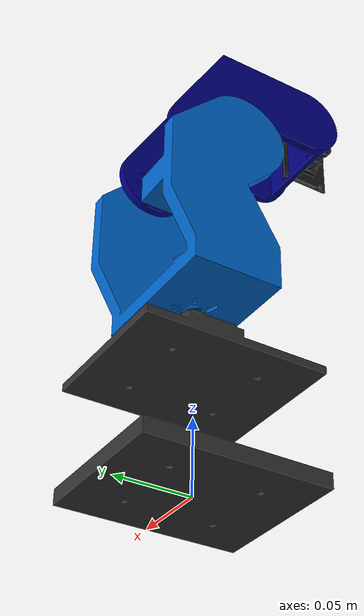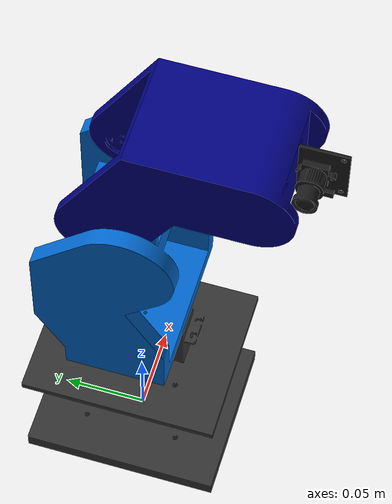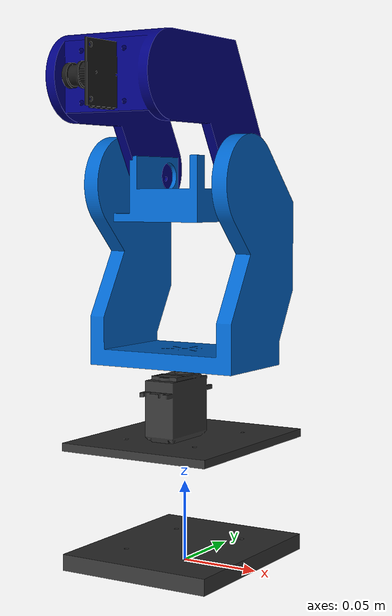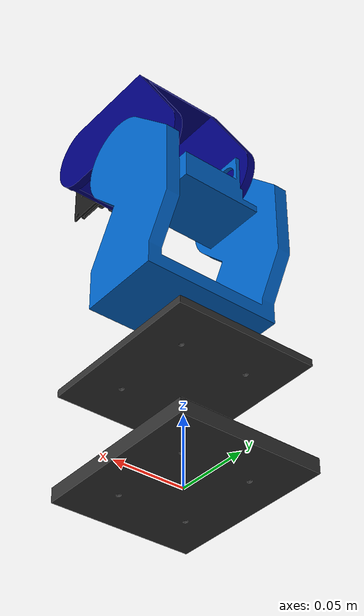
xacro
<?xml version="1.0"?>
<robot name="torreta_pan_tilt" xmlns:xacro="http://www.ros.org/wiki/xacro">

  <!-- MUNDO Y ANCLAJE -->
  <link name="world"/> <!-- Link ficticio para anclar la torreta al mundo -->
  <joint name="fixed_base_joint" type="fixed"> <!-- Junta fija para anclar la torreta al mundo, fixed: no tiene movimiento -->
    <parent link="world"/> <!-- El link padre es el mundo -->
    <child link="base_link"/> <!-- El link hijo es la base de la torreta -->
    <origin xyz="0 0 0" rpy="0 0 0"/>
  </joint>

  <!-- BASE ESTÁTICA -->
  <link name="base_link">
    <visual>
      <origin xyz="0 0 0" rpy="0 0 0"/>
      <geometry>
        <mesh filename="package://turret_description/meshes/Base_link.stl" scale="0.001 0.001 0.001"/>
      </geometry>
      <material name="dark_grey">
        <color rgba="0.2 0.2 0.2 1.0"/>
      </material>
    </visual>
    <collision>
      <origin xyz="0 0 0.05" rpy="0 0 0"/>
      <geometry>
        <box size="0.1 0.1 0.1"/>
      </geometry>
    </collision>
    <inertial>
      <origin xyz="0 0 0.05" rpy="0 0 0"/>
      <mass value="0.5"/>
      <inertia ixx="0.001" ixy="0" ixz="0" iyy="0.001" iyz="0" izz="0.001"/>
    </inertial>
  </link>

  <!-- MOTOR 1: PAN (Giro Horizontal) -->
  <joint name="pan_joint" type="revolute">
    <parent link="base_link"/>
    <child link="pan_link"/>
    <origin xyz="0 0 0.123" rpy="0 0 0"/>
    <axis xyz="0 0 1"/>
    <limit lower="-1.5708" upper="1.5708" effort="10.0" velocity="1.5"/>
  </joint>

  <!-- ESLABÓN 1 (Pieza azul en U) -->
  <link name="pan_link">
    <visual>
      <origin xyz="0 0 0" rpy="0 0 0"/>
      <geometry>
        <mesh filename="package://turret_description/meshes/Eslabon1_link.stl" scale="0.001 0.001 0.001"/>
      </geometry>
      <material name="blue">
        <color rgba="0.0 0.4 0.8 1.0"/>
      </material>
    </visual>

    <inertial>
      <origin xyz="-0.00130 0.00515 0.06382" rpy="0 0 0"/>
      <mass value="0.142"/>
      <inertia ixx="0.00059" ixy="0.0" ixz="0.0" iyy="0.00054" iyz="0.0" izz="0.00027"/>
    </inertial>
  </link>

  <!-- MOTOR 2: TILT (Cabeceo Vertical) -->
  <joint name="tilt_joint" type="revolute">
    <parent link="pan_link"/>
    <child link="tilt_link"/>
    <origin xyz="0.03008 0.01895 0.11477" rpy="0 0 0"/>
    <axis xyz="1 0 0"/>
    <limit lower="-1.5708" upper="1.5708" effort="10.0" velocity="1.5"/>
  </joint>

  <!-- ESLABÓN 2 (Soporte de la cámara) -->
  <link name="tilt_link">
    <visual>
      <origin xyz="0 -0.006 0.006" rpy="0 0 0"/>
      <geometry>
        <mesh filename="package://turret_description/meshes/Eslabon_2_link.stl" scale="0.001 0.001 0.001"/>
      </geometry>
      <material name="grey">
        <color rgba="0.0 0.0 0.5 1.0"/>
      </material>
    </visual>

    <inertial>
      <origin xyz="-0.02813 -0.04462 0.04276" rpy="0 0 0"/>
      <mass value="0.070"/>
      <inertia ixx="0.0001" ixy="0.0" ixz="0.0" iyy="0.0001" iyz="0.0" izz="0.0001"/>
    </inertial>
  </link>

  <!-- ARTICULACIÓN DE LA CÁMARA (Fija) -->
  <joint name="camera_joint" type="fixed">
    <parent link="tilt_link"/>
    <child link="camera_link"/>
    <origin xyz="-0.03036 -0.11550 0.05558" rpy="0 0 -1.57"/>
  </joint>

  <!-- ESLABÓN 3: CÁMARA (Modelo 3D) -->
  <link name="camera_link">
    <visual>
      <origin xyz="0 0.00988 0" rpy="0 0 0"/>
      <geometry>
        <mesh filename="package://turret_description/meshes/Camera.stl" scale="0.001 0.001 0.001"/>
      </geometry>
      <material name="black">
        <color rgba="0.1 0.1 0.1 1.0"/>
      </material>
    </visual>
    <inertial>
      <origin xyz="0 -0.00782 0" rpy="0 0 0"/>
      <mass value="0.050"/>
      <inertia ixx="0.00001" ixy="0" ixz="0" iyy="0.00001" iyz="0" izz="0.00001"/>
    </inertial>
  </link>

  <!-- NUEVO: ESLABÓN ÓPTICO (Rotación para OpenCV) -->
  <link name="camera_link_optical"></link>

  <joint name="camera_optical_joint" type="fixed">
    <parent link="camera_link"/>
    <child link="camera_link_optical"/>
    <origin xyz="0 0 0" rpy="1.57 3.1416 0 "/>
  </joint>

  <!-- SENSOR VIRTUAL DE GAZEBO -->
  <gazebo reference="camera_link">
    <sensor name="torreta_camera" type="camera">
      <pose>0 0 0 0 0 0</pose>
      <visualize>true</visualize>
      <update_rate>30.0</update_rate>
      <camera>
        <horizontal_fov>1.57</horizontal_fov>
        <image>
          <format>R8G8B8</format>
          <width>1920</width>
          <height>1080</height>
        </image>
        <clip>
          <near>0.05</near>
          <far>8.0</far>
        </clip>
      </camera>
      <topic>/camera/image_raw</topic>
      <gz_frame_id>camera_link_optical</gz_frame_id>
    </sensor>
  </gazebo>

  <gazebo>
    <plugin filename="gz-sim-sensors-system" name="gz::sim::systems::Sensors">
      <render_engine>ogre2</render_engine>
    </plugin>
  </gazebo>

  <!-- PLUGINS NATIVOS DE GAZEBO (SLIDERS EN GUI) -->

  <!-- SISTEMA DE CONTROL ROS 2 (COMENTADO PARA LA DEMO) -->

  <ros2_control name="GazeboSystem" type="system">
    <hardware>
      <plugin>gz_ros2_control/GazeboSimSystem</plugin>
    </hardware>

    <joint name="pan_joint">
      <command_interface name="position"/>
      <state_interface name="position"/>
      <state_interface name="velocity"/>
      <state_interface name="effort"/>
    </joint>

    <joint name="tilt_joint">
      <command_interface name="position"/>
      <state_interface name="position"/>
      <state_interface name="velocity"/>
      <state_interface name="effort"/>
    </joint>
  </ros2_control>

  <gazebo>
    <plugin filename="libgz_ros2_control-system.so" name="gz_ros2_control::GazeboSimROS2ControlPlugin">
      <parameters>$(find turret_description)/config/controllers.yaml</parameters>
    </plugin>
  </gazebo>

</robot>
